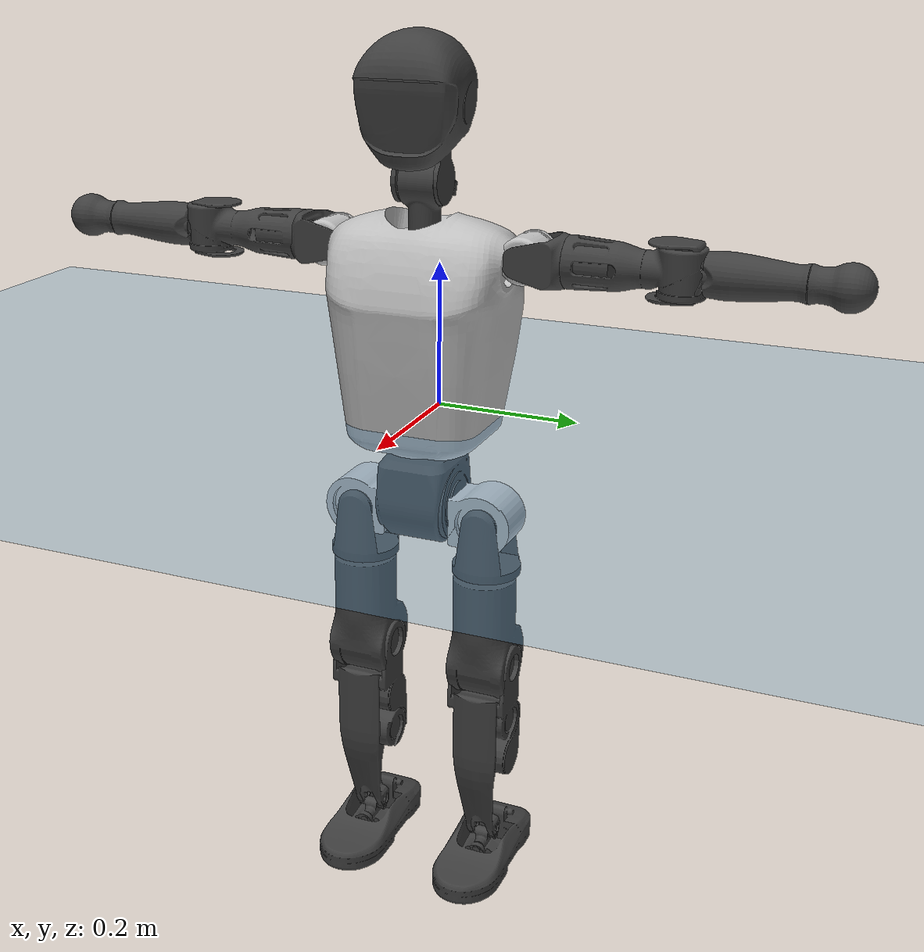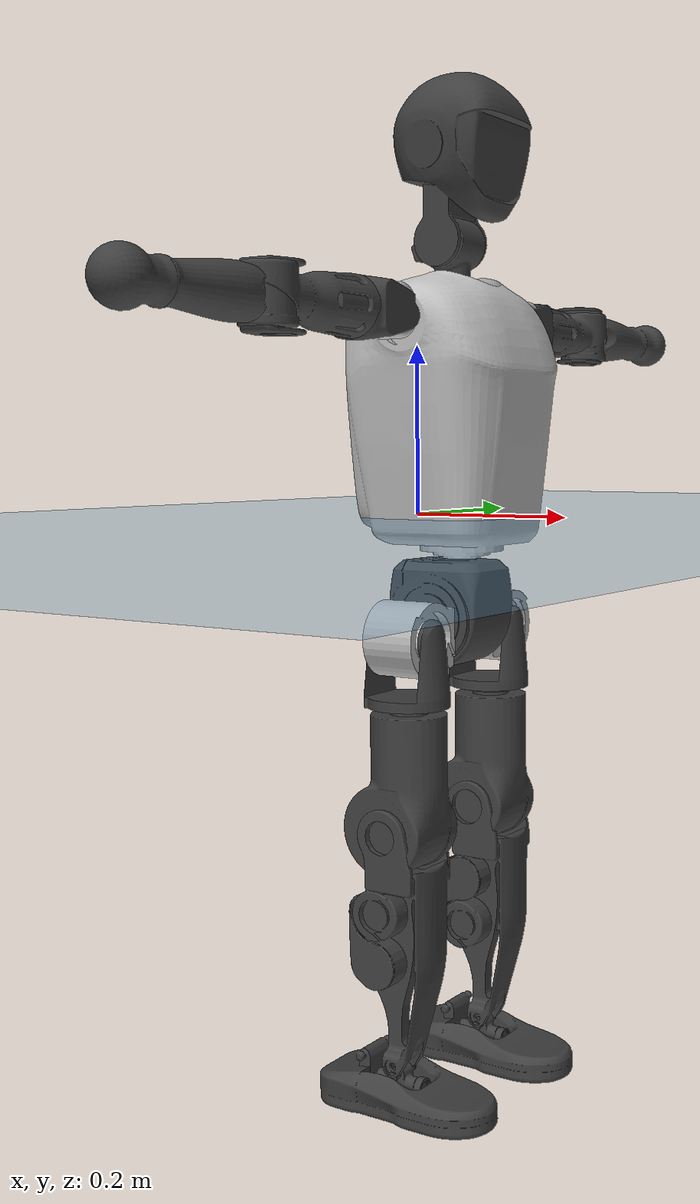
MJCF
<mujoco model="T1">
  <compiler angle="radian" assetdir="assets" balanceinertia="true" inertiafromgeom="false"/>

  <option timestep="0.005" density="1.2" viscosity="2e-05"/>

  <size nkey="1"/>

  <visual>
    <quality shadowsize="8192"/>
    <map shadowclip="0.5"/>
  </visual>

  <default>
    <default class="/">
      <joint armature="0.01" damping="0.01" frictionloss="0.1"/>
      <geom contype="0" conaffinity="0" group="1" solref="-1000 -80"/>
      <site size="0.01 0.005 0.005" group="5"/>
      <general forcelimited="true" biastype="affine" gainprm="25" biasprm="0 -25 -0.6"/>
      <default class="t1">
        <geom rgba="0.25 0.25 0.25 1"/>
        <default class="visual">
          <geom type="mesh" group="2"/>
        </default>
        <default class="collision">
          <geom group="3"/>
        </default>
        <default class="foot">
          <geom size="0.1115 0.05 0.015" type="box" condim="6" group="4" priority="1" solimp="0.015 1 0.015"/>
        </default>
        <default class="reward_collision_sphere">
          <geom group="5" rgba="1 0 0 1"/>
        </default>
      </default>
    </default>
  </default>

  <asset>
    <texture type="skybox" colorspace="auto" name="//unnamed_texture_0" builtin="gradient" rgb1="0.95 0.95 0.95" rgb2="0.95 0.95 0.95" width="100" height="600"/>
    <texture type="2d" colorspace="auto" name="texplane" builtin="checker" rgb1="0.345 0.575 0.748" rgb2="0.345 0.575 0.748" markrgb="1 1 1" width="512" height="512"/>
    <material name="MatPlane" class="/" texture="texplane" texuniform="true" texrepeat="2 2" specular="0.9"/>
    <mesh name="Trunk" class="/" file="Trunk.stl"/>
    <mesh name="H1" class="/" file="H1.stl"/>
    <mesh name="H2" class="/" file="H2.stl"/>
    <mesh name="AL1" class="/" file="AL1.stl"/>
    <mesh name="AL2" class="/" file="AL2.stl"/>
    <mesh name="AL3" class="/" file="AL3.stl"/>
    <mesh name="left_hand_link" class="/" file="left_hand_link.stl"/>
    <mesh name="AR1" class="/" file="AR1.stl"/>
    <mesh name="AR2" class="/" file="AR2.stl"/>
    <mesh name="AR3" class="/" file="AR3.stl"/>
    <mesh name="right_hand_link" class="/" file="right_hand_link.stl"/>
    <mesh name="Waist" class="/" file="Waist.stl"/>
    <mesh name="Hip_Pitch_Left" class="/" file="Hip_Pitch_Left.stl"/>
    <mesh name="Hip_Roll_Left" class="/" file="Hip_Roll_Left.stl"/>
    <mesh name="Hip_Yaw_Left" class="/" file="Hip_Yaw_Left.stl"/>
    <mesh name="Shank_Left" class="/" file="Shank_Left.stl"/>
    <mesh name="Ankle_Cross_Left" class="/" file="Ankle_Cross_Left.stl"/>
    <mesh name="left_foot_link" class="/" file="left_foot_link.stl"/>
    <mesh name="Hip_Pitch_Right" class="/" file="Hip_Pitch_Right.stl"/>
    <mesh name="Hip_Roll_Right" class="/" file="Hip_Roll_Right.stl"/>
    <mesh name="Hip_Yaw_Right" class="/" file="Hip_Yaw_Right.stl"/>
    <mesh name="Shank_Right" class="/" file="Shank_Right.stl"/>
    <mesh name="Ankle_Cross_Right" class="/" file="Ankle_Cross_Right.stl"/>
    <mesh name="right_foot_link" class="/" file="right_foot_link.stl"/>
  </asset>

  <worldbody>
    <geom name="floor" class="/" size="100 100 0.125" type="plane" group="0" material="MatPlane"/>
    <light name="toplight_shadow" class="/" pos="0 0 5" dir="0.0990148 0.0990148 -0.990148" type="directional" ambient="0.04 0.04 0.04" diffuse="0.55 0.55 0.55" specular="0.12 0.12 0.12"/>
    <light name="toplight_fill" class="/" pos="0 0 5" dir="0.0990148 0.0990148 -0.990148" type="directional" castshadow="false" ambient="0.04 0.04 0.04" diffuse="0.3 0.3 0.3" specular="0.08 0.08 0.08"/>
    <body name="trunk" childclass="t1" pos="-0.000365889 2.6799e-05 0.00105471" quat="1 -4.59083e-05 4.47637e-05 0.000221691">
      <inertial pos="0.0427809 -0.00133222 0.109736" quat="0.999958 0.00218216 -0.00845996 -0.00264567" mass="8.33655" diaginertia="0.0270201 0.0398392 0.0645841"/>
      <joint name="//unnamed_joint_0" type="free" armature="0" damping="0" frictionloss="0"/>
      <geom name="//unnamed_geom_1" class="visual" rgba="0.76 0.76 0.76 1" mesh="Trunk"/>
      <geom name="//unnamed_geom_2" class="collision" size="0.0675261 0.0900349 0.135052" pos="0.0471238 0 0.124527" type="box"/>
      <geom name="//unnamed_geom_3" class="reward_collision_sphere" size="0.10354" pos="0.0471238 0 0.103772"/>
      <geom name="//unnamed_geom_4" class="reward_collision_sphere" size="0.0135052" pos="0.0471238 0.0746238 0"/>
      <geom name="//unnamed_geom_5" class="reward_collision_sphere" size="0.0135052" pos="0.0471238 -0.0746238 0"/>
      <geom name="//unnamed_geom_6" class="reward_collision_sphere" size="0.0135052" pos="0.0471238 0.0939382 0.18679"/>
      <geom name="//unnamed_geom_7" class="reward_collision_sphere" size="0.0135052" pos="0.0471238 -0.0939382 0.18679"/>
      <site name="imu" pos="0.0111744 -0.00822118 -0.0047848" size="0.00900349"/>
      <camera name="track" pos="0 -1.75585 0" quat="0.707107 0.707107 0 0" mode="trackcom"/>
      <camera name="ego_camera" pos="0.0958183 0 0.435843" quat="-0.5 -0.5 0.5 0.5"/>
      <body name="H1" pos="0.0495008 -0.000189382 0.252176" quat="1 0.000148331 -0.000111828 0.000205965">
        <inertial pos="-0.00072803 -0.00100462 0.0598477" quat="0.766418 -0.0140518 0.00375522 0.642177" mass="0.328896" diaginertia="7.36387e-05 0.000116701 0.000184177"/>
        <joint name="AAHead_yaw" pos="0 0 0" axis="-0.00120538 0.000826433 0.999999" stiffness="0.00689925" range="-1.58893 1.56957" armature="0.00878123" damping="0.00612866" frictionloss="0.093687"/>
        <geom name="//unnamed_geom_8" class="visual" mesh="H1"/>
        <body name="H2" pos="-0.000676803 -0.00206616 0.06374" quat="1 -8.14509e-05 -9.01282e-05 4.88022e-05">
          <inertial pos="0.00754347 0.00267125 0.102353" quat="0.988083 0.106039 -0.0742512 -0.0832788" mass="0.474366" diaginertia="0.000601973 0.0010183 0.00207466"/>
          <joint name="Head_pitch" pos="0 0 0" axis="0.00272776 -0.999994 -0.002242" range="-1.2261 0.355484" armature="0.00831815" damping="0.00552397" frictionloss="0.0892828"/>
          <geom name="//unnamed_geom_9" class="visual" mesh="H2"/>
          <geom name="//unnamed_geom_10" class="collision" size="0.0720279" pos="0.00785396 0 0.114149"/>
          <geom name="//unnamed_geom_11" class="reward_collision_sphere" size="0.0810314" pos="0.0157079 0 0.103772"/>
        </body>
      </body>
      <body name="AL1" pos="0.0461767 0.0946154 0.227893" quat="1 0.000145952 0.000544022 -0.00032474">
        <inertial pos="-0.00157266 0.0384674 0.00183308" quat="0.503455 0.495166 -0.506733 0.494535" mass="0.387786" diaginertia="0.000407032 0.000671621 0.000346743"/>
        <joint name="Left_Shoulder_Pitch" pos="0 0 0" axis="-0.0006722 0.999986 -0.00516541" range="-3.34341 1.21602" armature="0.00886375" damping="0.011862" frictionloss="0.0889743"/>
        <geom name="//unnamed_geom_12" class="visual" rgba="0.76 0.76 0.76 1" mesh="AL1"/>
        <body name="AL2" pos="-0.000159039 0.0442573 -0.000878495" quat="0.999999 -0.0011422 0.000383576 0.000358843">
          <inertial pos="0.0017385 0.0332935 -0.00102687" quat="0.487718 0.511544 -0.488568 0.51162" mass="0.123107" diaginertia="0.00012193 0.00018684 0.000218317"/>
          <joint name="Left_Shoulder_Roll" pos="0 0 0" axis="-0.999985 -0.00430406 0.00331243" range="-1.57598 1.73585" armature="0.00872522" damping="0" frictionloss="0.0945957"/>
          <geom name="//unnamed_geom_13" class="visual" mesh="AL2"/>
          <body name="AL3" pos="0.000595748 0.0555609 0.00073115" quat="0.999999 1.91037e-05 0.000932338 0.000443032">
            <inertial pos="0.000139742 0.0754488 -0.000487939" quat="0.705596 0.708588 0.00393719 0.00478447" mass="0.761428" diaginertia="0.00391271 0.00686089 0.000771767"/>
            <joint name="Left_Elbow_Pitch" pos="0 0 0" axis="0.000255019 -1 -9.41198e-05" range="-2.25776 2.26426" armature="0.00906298" damping="0.0124632" frictionloss="0.0887698"/>
            <geom name="//unnamed_geom_14" class="visual" mesh="AL3"/>
            <geom name="//unnamed_geom_15" class="collision" size="0.0270105 0.0675261" pos="0 0.0438963 0" quat="0.707105 0.707108 0 0" type="cylinder"/>
            <geom name="//unnamed_geom_16" class="reward_collision_sphere" size="0.0324125"/>
            <body name="left_hand_link" pos="0.000137071 0.131777 0.00114675" quat="1 0.000532812 -0.000631862 0.000527061">
              <inertial pos="-0.000414075 0.0970317 -0.00125028" quat="0.707624 0.706538 0.00803909 -0.00278508" mass="0.232444" diaginertia="0.00234947 0.00411608 0.000253365"/>
              <joint name="Left_Elbow_Yaw" pos="0 0 0" axis="-0.00655187 0.00855961 0.999942" range="-2.44195 0.0189525" armature="0.00909751" damping="0.00936384" frictionloss="0.100058"/>
              <geom name="//unnamed_geom_17" class="visual" mesh="left_hand_link"/>
              <geom name="//unnamed_geom_18" class="collision" size="0.0270105 0.0787805" pos="0 0.11413 0" quat="0.707105 0.707108 0 0" type="cylinder"/>
              <geom name="//unnamed_geom_19" class="reward_collision_sphere" size="0.0450174"/>
              <geom name="//unnamed_geom_20" class="reward_collision_sphere" size="0.0315122" pos="0 0.096572 0"/>
              <geom name="//unnamed_geom_21" class="reward_collision_sphere" size="0.0315122" pos="0 0.188754 0"/>
            </body>
          </body>
        </body>
      </body>
      <body name="AR1" pos="0.0432192 -0.0915225 0.227211" quat="1 5.80366e-05 0.000485404 -2.4203e-05">
        <inertial pos="-0.000398982 -0.0391499 0.00018339" quat="0.502277 0.495875 -0.50456 0.497237" mass="0.380855" diaginertia="0.000407091 0.000675569 0.000349742"/>
        <joint name="Right_Shoulder_Pitch" pos="0 0 0" axis="-0.00405501 -0.99999 0.00166014" stiffness="0.0126302" range="-1.18667 3.30706" armature="0.00894586" damping="0.0149236" frictionloss="0.0889841"/>
        <geom name="//unnamed_geom_22" class="visual" rgba="0.76 0.76 0.76 1" mesh="AR1"/>
        <body name="AR2" pos="-0.00229143 -0.0392475 0.000188339" quat="1 -8.76353e-05 -0.000104746 4.86964e-05">
          <inertial pos="0.00298681 -0.0343354 -7.81017e-05" quat="0.512033 0.488187 -0.510499 0.48876" mass="0.115547" diaginertia="0.000115717 0.000172803 0.000211998"/>
          <joint name="Right_Shoulder_Roll" pos="0 0 0" axis="-0.999989 0.00460597 0.000593038" stiffness="0.00218343" range="-1.7508 1.53246" armature="0.00890653" damping="0.00451434" frictionloss="0.0818603"/>
          <geom name="//unnamed_geom_23" class="visual" mesh="AR2"/>
          <body name="AR3" pos="0.000289971 -0.0509537 0.00128943" quat="1 2.99933e-05 -0.000200177 -1.52623e-05">
            <inertial pos="-0.000525506 -0.0742041 -0.000178331" quat="0.701574 0.712554 -0.00662821 0.00402008" mass="0.751597" diaginertia="0.00388061 0.00669988 0.00075479"/>
            <joint name="Right_Elbow_Pitch" pos="0 0 0" axis="-8.59776e-05 0.999998 0.00218837" stiffness="0.00780686" range="-2.27172 2.27375" armature="0.00902587" damping="0.00756074" frictionloss="0.0991648"/>
            <geom name="//unnamed_geom_24" class="visual" mesh="AR3"/>
            <geom name="//unnamed_geom_25" class="collision" size="0.0270105 0.0675261" pos="0 -0.0438963 0" quat="0.707105 0.707108 0 0" type="cylinder"/>
            <geom name="//unnamed_geom_26" class="reward_collision_sphere" size="0.0324125"/>
            <body name="right_hand_link" pos="-0.00207717 -0.129435 -0.00141693" quat="1 -0.000112137 2.46696e-05 0.000107061">
              <inertial pos="-0.000651605 -0.0959627 0.00273159" quat="0.704177 0.709979 -0.00752117 0.0028723" mass="0.232318" diaginertia="0.00236889 0.00411353 0.000251406"/>
              <joint name="Right_Elbow_Yaw" pos="0 0 0" axis="-0.00295501 4.24833e-05 0.999996" range="-0.0240828 2.42954" armature="0.0100956" damping="0.00523102" frictionloss="0.0896854"/>
              <geom name="//unnamed_geom_27" class="visual" mesh="right_hand_link"/>
              <geom name="//unnamed_geom_28" class="collision" size="0.0270105 0.0787805" pos="0 -0.11413 0" quat="0.707105 0.707108 0 0" type="cylinder"/>
              <geom name="//unnamed_geom_29" class="reward_collision_sphere" size="0.0450174"/>
              <geom name="//unnamed_geom_30" class="reward_collision_sphere" size="0.0315122" pos="0 -0.096572 0"/>
              <geom name="//unnamed_geom_31" class="reward_collision_sphere" size="0.0315122" pos="0 -0.188754 0"/>
            </body>
          </body>
        </body>
      </body>
      <body name="Waist" pos="0.0492026 -0.00232873 -0.120746" quat="1 6.72558e-05 6.114e-06 1.50059e-06">
        <inertial pos="0.00342317 -0.000150265 0.00808236" quat="0.983955 0.00221423 -0.178301 0.00611038" mass="1.86328" diaginertia="0.00158156 0.00265837 0.00562928"/>
        <joint name="Waist" pos="0 0 0" axis="-0.00411767 0.00131272 0.999991" range="-1.52569 1.55227" armature="0.00840181" damping="0.010444" frictionloss="0.0878669"/>
        <geom name="//unnamed_geom_32" class="visual" mesh="Waist"/>
        <body name="Hip_Pitch_Left" pos="-0.00126105 0.0939357 -4.86704e-05" quat="1 -0.000399244 -0.00015388 -0.000788433">
          <inertial pos="0.000857059 -0.00449652 -0.0191359" quat="0.975248 0.220637 0.0142262 0.00290993" mass="0.747752" diaginertia="0.000537264 0.000782585 0.00150293"/>
          <joint name="Left_Hip_Pitch" pos="0 0 0" axis="-0.000830399 1 2.05108e-05" stiffness="0.00161023" range="-1.79639 1.57519" armature="0.00895787" damping="0.00576896" frictionloss="0.0898894"/>
          <geom name="//unnamed_geom_33" class="visual" rgba="0.76 0.76 0.76 1" mesh="Hip_Pitch_Left"/>
          <body name="Hip_Roll_Left" pos="-0.000416101 0.00013174 -0.0206618" quat="1 0.000275207 -0.000477706 4.25581e-05">
            <inertial pos="0.00172836 0.000251223 -0.0546436" quat="0.707462 -0.00675501 -0.0055482 0.706697" mass="0.280907" diaginertia="0.00051743 0.000773896 0.000607037"/>
            <joint name="Left_Hip_Roll" pos="0 0 0" axis="-0.999993 -0.00177905 0.00322194" range="-1.58488 0.219401" armature="0.00907996" damping="0.00785865" frictionloss="0.0948517"/>
            <geom name="//unnamed_geom_34" class="visual" mesh="Hip_Roll_Left"/>
            <geom name="//unnamed_geom_35" class="reward_collision_sphere" size="0.0495192"/>
            <body name="Hip_Yaw_Left" pos="0.00180723 -0.00131745 -0.0859427" quat="1 1.54141e-05 -4.76385e-06 3.97738e-05">
              <inertial pos="-0.00535091 4.93847e-05 -0.0925702" quat="0.702453 -0.0320505 -0.038834 0.709947" mass="1.59518" diaginertia="0.00771261 0.0128258 0.00310084"/>
              <joint name="Left_Hip_Yaw" pos="0 0 0" axis="0.00105433 -0.00517489 -0.999986" range="-1.00899 1.00948" armature="0.0090865" damping="0.0164128" frictionloss="0.0900885"/>
              <geom name="//unnamed_geom_36" class="visual" mesh="Hip_Yaw_Left"/>
              <geom name="//unnamed_geom_37" class="collision" size="0.0450174 0.0720279" type="cylinder"/>
              <body name="Shank_Left" pos="-0.00900785 0.00040824 -0.13894" quat="1 -0.000133023 0.000113332 5.20032e-05">
                <inertial pos="-0.0046128 -0.000365775 -0.128497" quat="0.99745 -0.00142518 -0.0211931 0.0681373" mass="1.24475" diaginertia="0.0103929 0.017993 0.00222417"/>
                <joint name="Left_Knee_Pitch" pos="0 0 0" axis="0.00449185 0.999989 0.00139206" range="-0.0191792 2.34102" armature="0.00868345" damping="0.00759988" frictionloss="0.0967584"/>
                <geom name="//unnamed_geom_38" class="visual" mesh="Shank_Left"/>
                <geom name="//unnamed_geom_39" class="collision" size="0.0450174 0.0675261" pos="0 0 -0.124527" type="cylinder"/>
                <geom name="//unnamed_geom_40" class="reward_collision_sphere" size="0.0585227"/>
                <body name="Ankle_Cross_Left" pos="-0.000503418 0.000124744 -0.291405" quat="1 9.88773e-05 2.78047e-05 -1.25766e-05">
                  <inertial pos="-0.00297624 -0.000355788 -0.0106165" quat="0.439239 0.553176 0.550163 0.445406" mass="0.0544773" diaginertia="9.02996e-06 1.36169e-05 1.39842e-05"/>
                  <joint name="Left_Ankle_Pitch" pos="0 0 0" axis="0.000571662 0.999999 -0.00152034" stiffness="0.0027871" range="-0.915636 0.34495" armature="0.00924106" damping="0.003171" frictionloss="0.0973194"/>
                  <geom name="//unnamed_geom_41" class="visual" mesh="Ankle_Cross_Left"/>
                  <body name="left_foot_link" pos="0.000214124 -3.33555e-05 -0.0151458" quat="1 0.000283211 0.000313709 9.08521e-05">
                    <inertial pos="0.000707872 -0.00185362 -0.00993136" quat="-6.20957e-05 0.62069 0.000117677 0.784056" mass="0.503211" diaginertia="0.000808465 0.00124079 0.00259464"/>
                    <joint name="Left_Ankle_Roll" pos="0 0 0" axis="-0.999997 -0.00161115 -0.00183843" range="-0.444928 0.459643" armature="0.00899794" damping="0.0154372" frictionloss="0.0918947"/>
                    <geom name="//unnamed_geom_42" class="visual" mesh="left_foot_link"/>
                    <geom name="left_foot" class="foot" size="0.101086 0.048997 0.0136398" pos="0.00785396 0 -0.0155658"/>
                    <geom name="//unnamed_geom_44" class="reward_collision_sphere" size="0.0468181" pos="0.00785396 0 -0.0155658"/>
                    <geom name="//unnamed_geom_45" class="reward_collision_sphere" size="0.0270105" pos="0.0746126 -0.0201923 -0.0155658"/>
                    <geom name="//unnamed_geom_46" class="reward_collision_sphere" size="0.0270105" pos="-0.0549777 -0.0201923 -0.0155658"/>
                    <site name="left_foot" class="foot" pos="0.00785396 0 -0.0155658" size="0.00900349"/>
                  </body>
                </body>
              </body>
            </body>
          </body>
        </body>
        <body name="Hip_Pitch_Right" pos="0.00150966 -0.0921931 0.000933509" quat="1 0.000143099 -3.96052e-05 -0.000194418">
          <inertial pos="0.000191777 0.00559269 -0.0164762" quat="0.972405 -0.232917 0.0132566 0.00147498" mass="0.737401" diaginertia="0.000533356 0.000753897 0.00150618"/>
          <joint name="Right_Hip_Pitch" pos="0 0 0" axis="-0.00259705 -0.999994 0.00223945" range="-1.56567 1.78841" armature="0.00957631" damping="0.0116752" frictionloss="0.088605"/>
          <geom name="//unnamed_geom_47" class="visual" rgba="0.76 0.76 0.76 1" mesh="Hip_Pitch_Right"/>
          <body name="Hip_Roll_Right" pos="-0.000888473 0.000787605 -0.0210076" quat="0.999999 -0.000125373 0.00101542 0.000803419">
            <inertial pos="0.00350655 -0.00094614 -0.0560161" quat="0.707918 -0.0057434 -0.000600897 0.706271" mass="0.278288" diaginertia="0.00051294 0.000776297 0.000614255"/>
            <joint name="Right_Hip_Roll" pos="0 0 0" axis="-0.999991 0.00056055 -0.00410006" range="-0.200691 1.59337" armature="0.00928656" damping="0.00613641" frictionloss="0.0896756"/>
            <geom name="//unnamed_geom_48" class="visual" mesh="Hip_Roll_Right"/>
            <geom name="//unnamed_geom_49" class="reward_collision_sphere" size="0.0495192"/>
            <body name="Hip_Yaw_Right" pos="0.000562479 -0.000782589 -0.084747" quat="0.999999 0.000661709 -0.000808777 -0.000470545">
              <inertial pos="-0.00518618 -0.000144181 -0.0935881" quat="0.714685 -0.0313631 -0.0348756 0.697872" mass="1.59739" diaginertia="0.00804012 0.0138844 0.00316368"/>
              <joint name="Right_Hip_Yaw" pos="0 0 0" axis="-0.00128888 -0.00144237 -0.999998" range="-1.0005 0.961318" armature="0.009152" damping="0.0126386" frictionloss="0.0818241"/>
              <geom name="//unnamed_geom_50" class="visual" mesh="Hip_Yaw_Right"/>
              <geom name="//unnamed_geom_51" class="collision" size="0.0450174 0.0720279" type="cylinder"/>
              <body name="Shank_Right" pos="-0.012439 -0.000143468 -0.139188" quat="1 -0.000320367 0.000378453 -0.00062528">
                <inertial pos="-0.00321376 -0.000441111 -0.126965" quat="0.999236 -0.000741801 -0.0236213 -0.0311361" mass="1.34191" diaginertia="0.0105598 0.017853 0.00233572"/>
                <joint name="Right_Knee_Pitch" pos="0 0 0" axis="-0.00413336 -0.99999 -0.00151428" range="-2.32149 0.00779075" armature="0.00927922" damping="0.00768783" frictionloss="0.0861592"/>
                <geom name="//unnamed_geom_52" class="visual" mesh="Shank_Right"/>
                <geom name="//unnamed_geom_53" class="collision" size="0.0450174 0.0675261" pos="0 0 -0.124527" type="cylinder"/>
                <geom name="//unnamed_geom_54" class="reward_collision_sphere" size="0.0585227"/>
                <body name="Ankle_Cross_Right" pos="0.0018672 -0.000326267 -0.291273" quat="1 -0.000714363 -0.000467237 -2.31694e-05">
                  <inertial pos="-0.00288524 9.07965e-05 -0.00843656" quat="0.443668 0.552359 0.552449 0.439156" mass="0.0517925" diaginertia="8.6045e-06 1.32636e-05 1.34963e-05"/>
                  <joint name="Right_Ankle_Pitch" pos="0 0 0" axis="-0.0125514 -0.999919 0.00215018" range="-0.352694 0.858909" armature="0.00949368" damping="0.00447085" frictionloss="0.0798152"/>
                  <geom name="//unnamed_geom_55" class="visual" mesh="Ankle_Cross_Right"/>
                  <body name="right_foot_link" pos="0.00142872 -0.0008905 -0.0127487" quat="1 -2.2121e-06 -0.000207445 1.15137e-05">
                    <inertial pos="-0.000856292 -0.000357229 -0.0109127" quat="-0.000359996 0.620963 -0.000304087 0.78384" mass="0.502452" diaginertia="0.000793033 0.0012349 0.00262527"/>
                    <joint name="Right_Ankle_Roll" pos="0 0 0" axis="-0.999972 -0.00414318 0.00629213" range="-0.392676 0.426063" armature="0.00861069" damping="0.00888818" frictionloss="0.0923915"/>
                    <geom name="//unnamed_geom_56" class="visual" mesh="right_foot_link"/>
                    <geom name="right_foot" class="foot" size="0.0922989 0.0453073 0.0136543" pos="0.00785396 0 -0.0155658"/>
                    <geom name="//unnamed_geom_58" class="reward_collision_sphere" size="0.0360139"/>
                    <geom name="//unnamed_geom_59" class="reward_collision_sphere" size="0.0270105" pos="0.00785396 0 -0.0155658"/>
                    <geom name="//unnamed_geom_60" class="reward_collision_sphere" size="0.0270105" pos="0.0746126 0.0201923 -0.0155658"/>
                    <geom name="//unnamed_geom_61" class="reward_collision_sphere" size="0.0270105" pos="-0.0549777 0.0201923 -0.0155658"/>
                    <site name="right_foot" class="foot" pos="0.00785396 0 -0.0155658" size="0.00900349"/>
                  </body>
                </body>
              </body>
            </body>
          </body>
        </body>
      </body>
    </body>
  </worldbody>

  <contact>
    <pair class="/" geom1="floor" geom2="left_foot" name="//unnamed_contact_0"/>
    <pair class="/" geom1="floor" geom2="right_foot" name="//unnamed_contact_1"/>
  </contact>

  <actuator>
    <general name="AAHead_yaw" class="/" joint="AAHead_yaw" forcerange="-6.47866 6.47866" gainprm="23.1197" biasprm="0 -23.1197 -0.512726"/>
    <general name="Head_pitch" class="/" joint="Head_pitch" forcerange="-6.37506 6.37506" gainprm="23.1197" biasprm="0 -23.1197 -0.512726"/>
    <general name="Left_Shoulder_Pitch" class="/" joint="Left_Shoulder_Pitch" forcerange="-16.3211 16.3211" gainprm="23.1197" biasprm="0 -23.1197 -0.512726"/>
    <general name="Left_Shoulder_Roll" class="/" joint="Left_Shoulder_Roll" forcerange="-16.2101 16.2101" gainprm="23.1197" biasprm="0 -23.1197 -0.512726"/>
    <general name="Left_Elbow_Pitch" class="/" joint="Left_Elbow_Pitch" forcerange="-17.1027 17.1027" gainprm="23.1197" biasprm="0 -23.1197 -0.512726"/>
    <general name="Left_Elbow_Yaw" class="/" joint="Left_Elbow_Yaw" forcerange="-16.3762 16.3762" gainprm="23.1197" biasprm="0 -23.1197 -0.512726"/>
    <general name="Right_Shoulder_Pitch" class="/" joint="Right_Shoulder_Pitch" forcerange="-16.4345 16.4345" gainprm="23.1197" biasprm="0 -23.1197 -0.512726"/>
    <general name="Right_Shoulder_Roll" class="/" joint="Right_Shoulder_Roll" forcerange="-16.3256 16.3256" gainprm="23.1197" biasprm="0 -23.1197 -0.512726"/>
    <general name="Right_Elbow_Pitch" class="/" joint="Right_Elbow_Pitch" forcerange="-16.7597 16.7597" gainprm="23.1197" biasprm="0 -23.1197 -0.512726"/>
    <general name="Right_Elbow_Yaw" class="/" joint="Right_Elbow_Yaw" forcerange="-17.0119 17.0119" gainprm="23.1197" biasprm="0 -23.1197 -0.512726"/>
    <general name="Waist" class="/" joint="Waist" forcerange="-26.4152 26.4152" gainprm="23.1197" biasprm="0 -23.1197 -0.512726"/>
    <general name="Left_Hip_Pitch" class="/" joint="Left_Hip_Pitch" forcerange="-36.937 36.937" gainprm="23.1197" biasprm="0 -23.1197 -0.512726"/>
    <general name="Left_Hip_Roll" class="/" joint="Left_Hip_Roll" forcerange="-26.5407 26.5407" gainprm="23.1197" biasprm="0 -23.1197 -0.512726"/>
    <general name="Left_Hip_Yaw" class="/" joint="Left_Hip_Yaw" forcerange="-25.9899 25.9899" gainprm="23.1197" biasprm="0 -23.1197 -0.512726"/>
    <general name="Left_Knee_Pitch" class="/" joint="Left_Knee_Pitch" forcerange="-56.614 56.614" gainprm="23.1197" biasprm="0 -23.1197 -0.512726"/>
    <general name="Left_Ankle_Pitch" class="/" joint="Left_Ankle_Pitch" forcerange="-17.9349 17.9349" gainprm="23.1197" biasprm="0 -23.1197 -0.512726"/>
    <general name="Left_Ankle_Roll" class="/" joint="Left_Ankle_Roll" forcerange="-13.3926 13.3926" gainprm="23.1197" biasprm="0 -23.1197 -0.512726"/>
    <general name="Right_Hip_Pitch" class="/" joint="Right_Hip_Pitch" forcerange="-43.646 43.646" gainprm="23.1197" biasprm="0 -23.1197 -0.512726"/>
    <general name="Right_Hip_Roll" class="/" joint="Right_Hip_Roll" forcerange="-26.3617 26.3617" gainprm="23.1197" biasprm="0 -23.1197 -0.512726"/>
    <general name="Right_Hip_Yaw" class="/" joint="Right_Hip_Yaw" forcerange="-25.9858 25.9858" gainprm="23.1197" biasprm="0 -23.1197 -0.512726"/>
    <general name="Right_Knee_Pitch" class="/" joint="Right_Knee_Pitch" forcerange="-53.8723 53.8723" gainprm="23.1197" biasprm="0 -23.1197 -0.512726"/>
    <general name="Right_Ankle_Pitch" class="/" joint="Right_Ankle_Pitch" forcerange="-18.5418 18.5418" gainprm="23.1197" biasprm="0 -23.1197 -0.512726"/>
    <general name="Right_Ankle_Roll" class="/" joint="Right_Ankle_Roll" forcerange="-12.4802 12.4802" gainprm="23.1197" biasprm="0 -23.1197 -0.512726"/>
  </actuator>

  <sensor>
    <gyro site="imu" name="imu_angular_velocity"/>
    <velocimeter site="imu" name="imu_linear_velocity"/>
    <framelinvel objtype="site" objname="left_foot" name="left_foot_global_linear_velocity"/>
    <framelinvel objtype="site" objname="right_foot" name="right_foot_global_linear_velocity"/>
  </sensor>

  <keyframe>
    <key name="home" qpos="0 0 0.6385 1 0 0 0 0 0 0 1.4 0 -0.4 0 -1.4 0 0.4 0 -0.4 0 0 0.8 -0.4 0 0.4 0 0 -0.8 0.4 0"/>
  </keyframe>
</mujoco>
